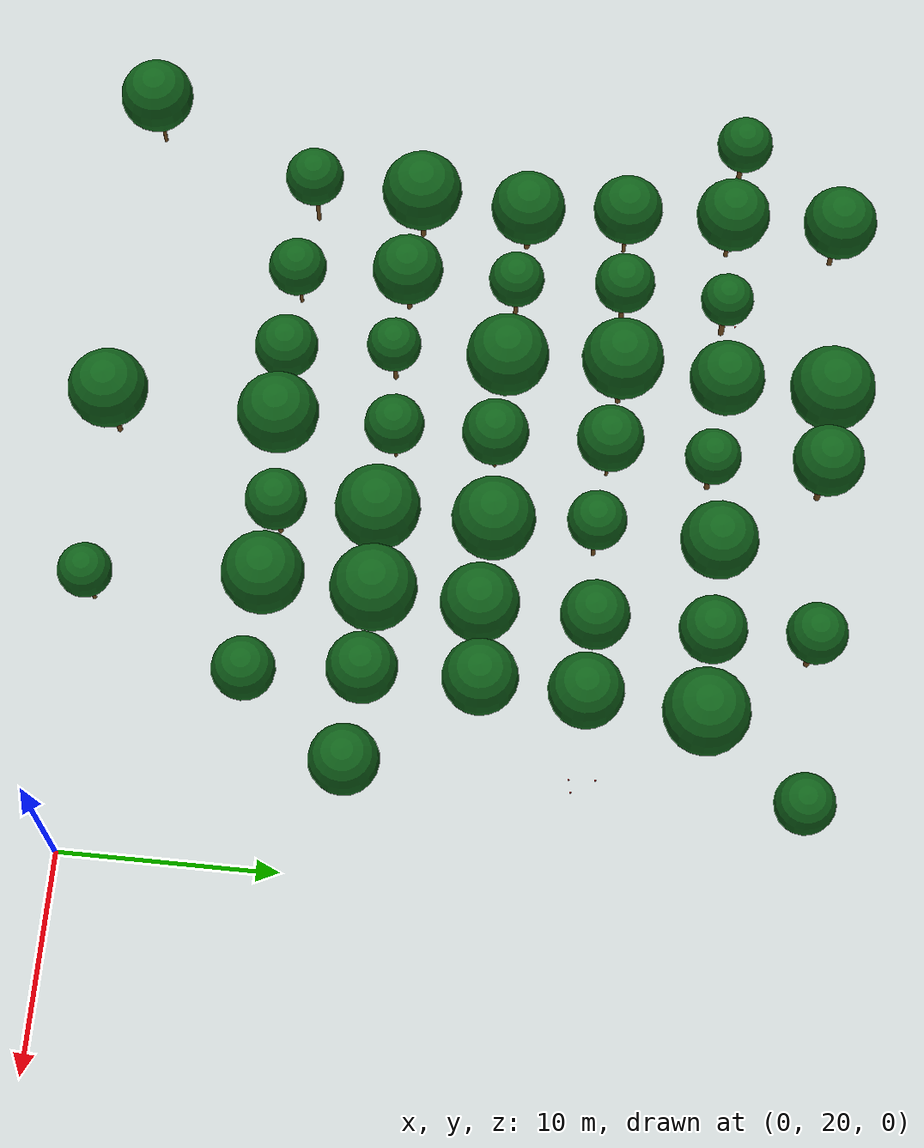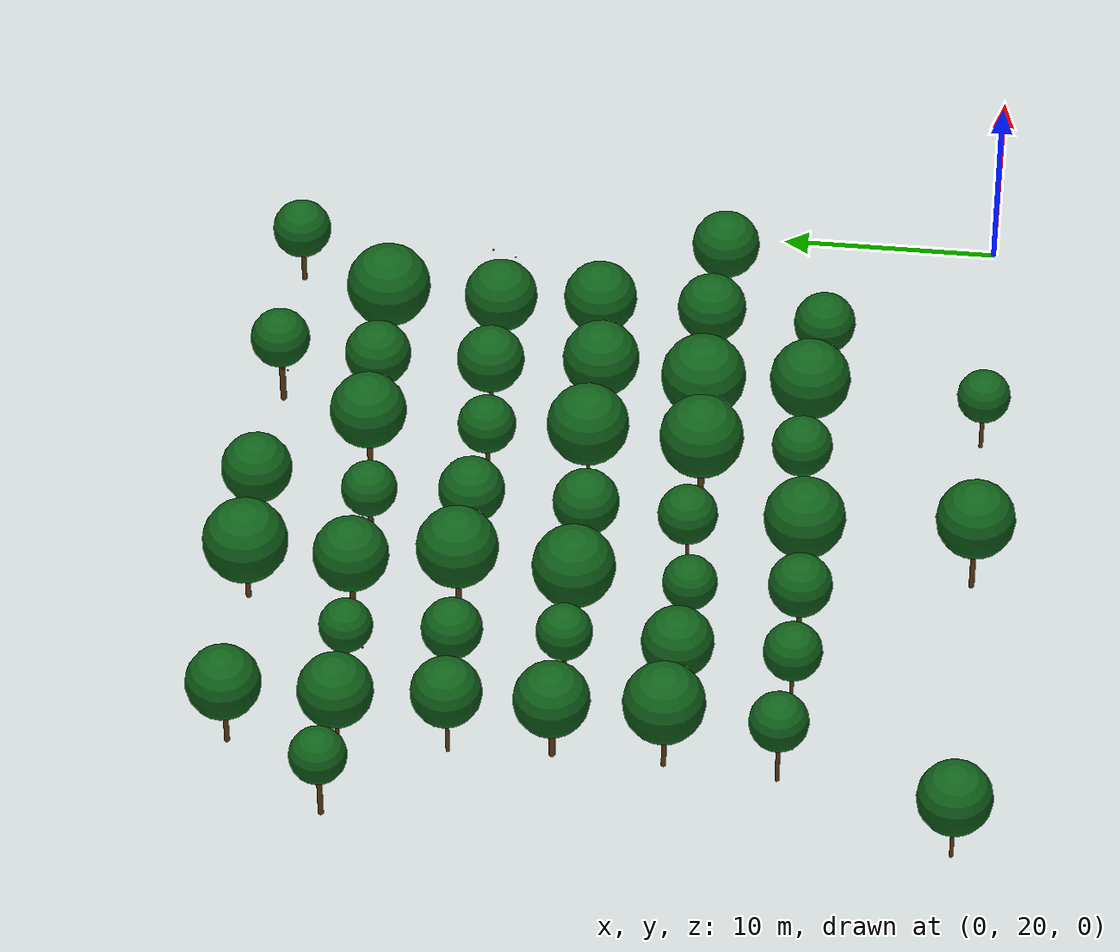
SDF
<sdf version="1.9">
 <world name="cheongsong_orchard">
  <model name="apple_tree_1439">
   <static>true</static>
   <pose>-35.99 19.99 0 0 0 0</pose>
   <link name="link">
    <collision name="trunk_col">
     <pose>0 0 1.26 0 0 0</pose>
     <geometry><cylinder><radius>0.089</radius><length>2.51</length></cylinder></geometry>
    </collision>
    <visual name="trunk_vis">
     <pose>0 0 1.26 0 0 0</pose>
     <geometry><cylinder><radius>0.089</radius><length>2.51</length></cylinder></geometry>
     <material><ambient>0.35 0.22 0.08 1</ambient><diffuse>0.45 0.30 0.12 1</diffuse></material>
    </visual>
    <collision name="canopy_col">
     <pose>0 0 4.22 0 0 0</pose>
     <geometry><sphere><radius>1.71</radius></sphere></geometry>
    </collision>
    <visual name="canopy_vis">
     <pose>0 0 4.22 0 0 0</pose>
     <geometry><sphere><radius>1.71</radius></sphere></geometry>
     <material><ambient>0.04 0.28 0.06 1</ambient><diffuse>0.06 0.38 0.10 1</diffuse></material>
    </visual>
   </link>
  </model>
  <model name="apple_tree_1443">
   <static>true</static>
   <pose>-20.47 19.95 0 0 0 0</pose>
   <link name="link">
    <collision name="trunk_col">
     <pose>0 0 1.45 0 0 0</pose>
     <geometry><cylinder><radius>0.124</radius><length>2.91</length></cylinder></geometry>
    </collision>
    <visual name="trunk_vis">
     <pose>0 0 1.45 0 0 0</pose>
     <geometry><cylinder><radius>0.124</radius><length>2.91</length></cylinder></geometry>
     <material><ambient>0.35 0.22 0.08 1</ambient><diffuse>0.45 0.30 0.12 1</diffuse></material>
    </visual>
    <collision name="canopy_col">
     <pose>0 0 4.73 0 0 0</pose>
     <geometry><sphere><radius>1.82</radius></sphere></geometry>
    </collision>
    <visual name="canopy_vis">
     <pose>0 0 4.73 0 0 0</pose>
     <geometry><sphere><radius>1.82</radius></sphere></geometry>
     <material><ambient>0.04 0.28 0.06 1</ambient><diffuse>0.06 0.38 0.10 1</diffuse></material>
    </visual>
   </link>
  </model>
  <model name="apple_tree_1445">
   <static>true</static>
   <pose>-12.05 19.99 0 0 0 0</pose>
   <link name="link">
    <collision name="trunk_col">
     <pose>0 0 1.16 0 0 0</pose>
     <geometry><cylinder><radius>0.098</radius><length>2.32</length></cylinder></geometry>
    </collision>
    <visual name="trunk_vis">
     <pose>0 0 1.16 0 0 0</pose>
     <geometry><cylinder><radius>0.098</radius><length>2.32</length></cylinder></geometry>
     <material><ambient>0.35 0.22 0.08 1</ambient><diffuse>0.45 0.30 0.12 1</diffuse></material>
    </visual>
    <collision name="canopy_col">
     <pose>0 0 3.56 0 0 0</pose>
     <geometry><sphere><radius>1.24</radius></sphere></geometry>
    </collision>
    <visual name="canopy_vis">
     <pose>0 0 3.56 0 0 0</pose>
     <geometry><sphere><radius>1.24</radius></sphere></geometry>
     <material><ambient>0.04 0.28 0.06 1</ambient><diffuse>0.06 0.38 0.10 1</diffuse></material>
    </visual>
   </link>
  </model>
  <model name="apple_tree_1490">
   <static>true</static>
   <pose>-32.43 27.95 0 0 0 0</pose>
   <link name="link">
    <collision name="trunk_col">
     <pose>0 0 1.40 0 0 0</pose>
     <geometry><cylinder><radius>0.099</radius><length>2.81</length></cylinder></geometry>
    </collision>
    <visual name="trunk_vis">
     <pose>0 0 1.40 0 0 0</pose>
     <geometry><cylinder><radius>0.099</radius><length>2.81</length></cylinder></geometry>
     <material><ambient>0.35 0.22 0.08 1</ambient><diffuse>0.45 0.30 0.12 1</diffuse></material>
    </visual>
    <collision name="canopy_col">
     <pose>0 0 4.17 0 0 0</pose>
     <geometry><sphere><radius>1.36</radius></sphere></geometry>
    </collision>
    <visual name="canopy_vis">
     <pose>0 0 4.17 0 0 0</pose>
     <geometry><sphere><radius>1.36</radius></sphere></geometry>
     <material><ambient>0.04 0.28 0.06 1</ambient><diffuse>0.06 0.38 0.10 1</diffuse></material>
    </visual>
   </link>
  </model>
  <model name="apple_tree_1491">
   <static>true</static>
   <pose>-27.95 27.65 0 0 0 0</pose>
   <link name="link">
    <collision name="trunk_col">
     <pose>0 0 1.13 0 0 0</pose>
     <geometry><cylinder><radius>0.085</radius><length>2.26</length></cylinder></geometry>
    </collision>
    <visual name="trunk_vis">
     <pose>0 0 1.13 0 0 0</pose>
     <geometry><cylinder><radius>0.085</radius><length>2.26</length></cylinder></geometry>
     <material><ambient>0.35 0.22 0.08 1</ambient><diffuse>0.45 0.30 0.12 1</diffuse></material>
    </visual>
    <collision name="canopy_col">
     <pose>0 0 3.61 0 0 0</pose>
     <geometry><sphere><radius>1.35</radius></sphere></geometry>
    </collision>
    <visual name="canopy_vis">
     <pose>0 0 3.61 0 0 0</pose>
     <geometry><sphere><radius>1.35</radius></sphere></geometry>
     <material><ambient>0.04 0.28 0.06 1</ambient><diffuse>0.06 0.38 0.10 1</diffuse></material>
    </visual>
   </link>
  </model>
  <model name="apple_tree_1492">
   <static>true</static>
   <pose>-23.95 27.60 0 0 0 0</pose>
   <link name="link">
    <collision name="trunk_col">
     <pose>0 0 0.98 0 0 0</pose>
     <geometry><cylinder><radius>0.113</radius><length>1.96</length></cylinder></geometry>
    </collision>
    <visual name="trunk_vis">
     <pose>0 0 0.98 0 0 0</pose>
     <geometry><cylinder><radius>0.113</radius><length>1.96</length></cylinder></geometry>
     <material><ambient>0.35 0.22 0.08 1</ambient><diffuse>0.45 0.30 0.12 1</diffuse></material>
    </visual>
    <collision name="canopy_col">
     <pose>0 0 3.43 0 0 0</pose>
     <geometry><sphere><radius>1.47</radius></sphere></geometry>
    </collision>
    <visual name="canopy_vis">
     <pose>0 0 3.43 0 0 0</pose>
     <geometry><sphere><radius>1.47</radius></sphere></geometry>
     <material><ambient>0.04 0.28 0.06 1</ambient><diffuse>0.06 0.38 0.10 1</diffuse></material>
    </visual>
   </link>
  </model>
  <model name="apple_tree_1493">
   <static>true</static>
   <pose>-20.38 27.67 0 0 0 0</pose>
   <link name="link">
    <collision name="trunk_col">
     <pose>0 0 1.01 0 0 0</pose>
     <geometry><cylinder><radius>0.128</radius><length>2.03</length></cylinder></geometry>
    </collision>
    <visual name="trunk_vis">
     <pose>0 0 1.01 0 0 0</pose>
     <geometry><cylinder><radius>0.128</radius><length>2.03</length></cylinder></geometry>
     <material><ambient>0.35 0.22 0.08 1</ambient><diffuse>0.45 0.30 0.12 1</diffuse></material>
    </visual>
    <collision name="canopy_col">
     <pose>0 0 3.91 0 0 0</pose>
     <geometry><sphere><radius>1.88</radius></sphere></geometry>
    </collision>
    <visual name="canopy_vis">
     <pose>0 0 3.91 0 0 0</pose>
     <geometry><sphere><radius>1.88</radius></sphere></geometry>
     <material><ambient>0.04 0.28 0.06 1</ambient><diffuse>0.06 0.38 0.10 1</diffuse></material>
    </visual>
   </link>
  </model>
  <model name="apple_tree_1494">
   <static>true</static>
   <pose>-16.13 28.09 0 0 0 0</pose>
   <link name="link">
    <collision name="trunk_col">
     <pose>0 0 1.26 0 0 0</pose>
     <geometry><cylinder><radius>0.114</radius><length>2.52</length></cylinder></geometry>
    </collision>
    <visual name="trunk_vis">
     <pose>0 0 1.26 0 0 0</pose>
     <geometry><cylinder><radius>0.114</radius><length>2.52</length></cylinder></geometry>
     <material><ambient>0.35 0.22 0.08 1</ambient><diffuse>0.45 0.30 0.12 1</diffuse></material>
    </visual>
    <collision name="canopy_col">
     <pose>0 0 3.92 0 0 0</pose>
     <geometry><sphere><radius>1.40</radius></sphere></geometry>
    </collision>
    <visual name="canopy_vis">
     <pose>0 0 3.92 0 0 0</pose>
     <geometry><sphere><radius>1.40</radius></sphere></geometry>
     <material><ambient>0.04 0.28 0.06 1</ambient><diffuse>0.06 0.38 0.10 1</diffuse></material>
    </visual>
   </link>
  </model>
  <model name="apple_tree_1495">
   <static>true</static>
   <pose>-12.42 28.00 0 0 0 0</pose>
   <link name="link">
    <collision name="trunk_col">
     <pose>0 0 1.25 0 0 0</pose>
     <geometry><cylinder><radius>0.149</radius><length>2.50</length></cylinder></geometry>
    </collision>
    <visual name="trunk_vis">
     <pose>0 0 1.25 0 0 0</pose>
     <geometry><cylinder><radius>0.149</radius><length>2.50</length></cylinder></geometry>
     <material><ambient>0.35 0.22 0.08 1</ambient><diffuse>0.45 0.30 0.12 1</diffuse></material>
    </visual>
    <collision name="canopy_col">
     <pose>0 0 4.37 0 0 0</pose>
     <geometry><sphere><radius>1.87</radius></sphere></geometry>
    </collision>
    <visual name="canopy_vis">
     <pose>0 0 4.37 0 0 0</pose>
     <geometry><sphere><radius>1.87</radius></sphere></geometry>
     <material><ambient>0.04 0.28 0.06 1</ambient><diffuse>0.06 0.38 0.10 1</diffuse></material>
    </visual>
   </link>
  </model>
  <model name="apple_tree_1496">
   <static>true</static>
   <pose>-8.17 27.61 0 0 0 0</pose>
   <link name="link">
    <collision name="trunk_col">
     <pose>0 0 1.05 0 0 0</pose>
     <geometry><cylinder><radius>0.087</radius><length>2.09</length></cylinder></geometry>
    </collision>
    <visual name="trunk_vis">
     <pose>0 0 1.05 0 0 0</pose>
     <geometry><cylinder><radius>0.087</radius><length>2.09</length></cylinder></geometry>
     <material><ambient>0.35 0.22 0.08 1</ambient><diffuse>0.45 0.30 0.12 1</diffuse></material>
    </visual>
    <collision name="canopy_col">
     <pose>0 0 3.54 0 0 0</pose>
     <geometry><sphere><radius>1.44</radius></sphere></geometry>
    </collision>
    <visual name="canopy_vis">
     <pose>0 0 3.54 0 0 0</pose>
     <geometry><sphere><radius>1.44</radius></sphere></geometry>
     <material><ambient>0.04 0.28 0.06 1</ambient><diffuse>0.06 0.38 0.10 1</diffuse></material>
    </visual>
   </link>
  </model>
  <model name="apple_tree_1542">
   <static>true</static>
   <pose>-32.05 33.06 0 0 0 0</pose>
   <link name="link">
    <collision name="trunk_col">
     <pose>0 0 1.29 0 0 0</pose>
     <geometry><cylinder><radius>0.115</radius><length>2.58</length></cylinder></geometry>
    </collision>
    <visual name="trunk_vis">
     <pose>0 0 1.29 0 0 0</pose>
     <geometry><cylinder><radius>0.115</radius><length>2.58</length></cylinder></geometry>
     <material><ambient>0.35 0.22 0.08 1</ambient><diffuse>0.45 0.30 0.12 1</diffuse></material>
    </visual>
    <collision name="canopy_col">
     <pose>0 0 4.44 0 0 0</pose>
     <geometry><sphere><radius>1.87</radius></sphere></geometry>
    </collision>
    <visual name="canopy_vis">
     <pose>0 0 4.44 0 0 0</pose>
     <geometry><sphere><radius>1.87</radius></sphere></geometry>
     <material><ambient>0.04 0.28 0.06 1</ambient><diffuse>0.06 0.38 0.10 1</diffuse></material>
    </visual>
   </link>
  </model>
  <model name="apple_tree_1543">
   <static>true</static>
   <pose>-28.15 32.79 0 0 0 0</pose>
   <link name="link">
    <collision name="trunk_col">
     <pose>0 0 1.15 0 0 0</pose>
     <geometry><cylinder><radius>0.123</radius><length>2.29</length></cylinder></geometry>
    </collision>
    <visual name="trunk_vis">
     <pose>0 0 1.15 0 0 0</pose>
     <geometry><cylinder><radius>0.123</radius><length>2.29</length></cylinder></geometry>
     <material><ambient>0.35 0.22 0.08 1</ambient><diffuse>0.45 0.30 0.12 1</diffuse></material>
    </visual>
    <collision name="canopy_col">
     <pose>0 0 3.94 0 0 0</pose>
     <geometry><sphere><radius>1.65</radius></sphere></geometry>
    </collision>
    <visual name="canopy_vis">
     <pose>0 0 3.94 0 0 0</pose>
     <geometry><sphere><radius>1.65</radius></sphere></geometry>
     <material><ambient>0.04 0.28 0.06 1</ambient><diffuse>0.06 0.38 0.10 1</diffuse></material>
    </visual>
   </link>
  </model>
  <model name="apple_tree_1544">
   <static>true</static>
   <pose>-24.41 32.55 0 0 0 0</pose>
   <link name="link">
    <collision name="trunk_col">
     <pose>0 0 1.18 0 0 0</pose>
     <geometry><cylinder><radius>0.106</radius><length>2.37</length></cylinder></geometry>
    </collision>
    <visual name="trunk_vis">
     <pose>0 0 1.18 0 0 0</pose>
     <geometry><cylinder><radius>0.106</radius><length>2.37</length></cylinder></geometry>
     <material><ambient>0.35 0.22 0.08 1</ambient><diffuse>0.45 0.30 0.12 1</diffuse></material>
    </visual>
    <collision name="canopy_col">
     <pose>0 0 3.62 0 0 0</pose>
     <geometry><sphere><radius>1.26</radius></sphere></geometry>
    </collision>
    <visual name="canopy_vis">
     <pose>0 0 3.62 0 0 0</pose>
     <geometry><sphere><radius>1.26</radius></sphere></geometry>
     <material><ambient>0.04 0.28 0.06 1</ambient><diffuse>0.06 0.38 0.10 1</diffuse></material>
    </visual>
   </link>
  </model>
  <model name="apple_tree_1545">
   <static>true</static>
   <pose>-20.44 32.98 0 0 0 0</pose>
   <link name="link">
    <collision name="trunk_col">
     <pose>0 0 1.12 0 0 0</pose>
     <geometry><cylinder><radius>0.088</radius><length>2.24</length></cylinder></geometry>
    </collision>
    <visual name="trunk_vis">
     <pose>0 0 1.12 0 0 0</pose>
     <geometry><cylinder><radius>0.088</radius><length>2.24</length></cylinder></geometry>
     <material><ambient>0.35 0.22 0.08 1</ambient><diffuse>0.45 0.30 0.12 1</diffuse></material>
    </visual>
    <collision name="canopy_col">
     <pose>0 0 3.63 0 0 0</pose>
     <geometry><sphere><radius>1.38</radius></sphere></geometry>
    </collision>
    <visual name="canopy_vis">
     <pose>0 0 3.63 0 0 0</pose>
     <geometry><sphere><radius>1.38</radius></sphere></geometry>
     <material><ambient>0.04 0.28 0.06 1</ambient><diffuse>0.06 0.38 0.10 1</diffuse></material>
    </visual>
   </link>
  </model>
  <model name="apple_tree_1546">
   <static>true</static>
   <pose>-16.13 32.71 0 0 0 0</pose>
   <link name="link">
    <collision name="trunk_col">
     <pose>0 0 1.08 0 0 0</pose>
     <geometry><cylinder><radius>0.146</radius><length>2.17</length></cylinder></geometry>
    </collision>
    <visual name="trunk_vis">
     <pose>0 0 1.08 0 0 0</pose>
     <geometry><cylinder><radius>0.146</radius><length>2.17</length></cylinder></geometry>
     <material><ambient>0.35 0.22 0.08 1</ambient><diffuse>0.45 0.30 0.12 1</diffuse></material>
    </visual>
    <collision name="canopy_col">
     <pose>0 0 4.11 0 0 0</pose>
     <geometry><sphere><radius>1.94</radius></sphere></geometry>
    </collision>
    <visual name="canopy_vis">
     <pose>0 0 4.11 0 0 0</pose>
     <geometry><sphere><radius>1.94</radius></sphere></geometry>
     <material><ambient>0.04 0.28 0.06 1</ambient><diffuse>0.06 0.38 0.10 1</diffuse></material>
    </visual>
   </link>
  </model>
  <model name="apple_tree_1547">
   <static>true</static>
   <pose>-12.34 32.93 0 0 0 0</pose>
   <link name="link">
    <collision name="trunk_col">
     <pose>0 0 1.01 0 0 0</pose>
     <geometry><cylinder><radius>0.141</radius><length>2.02</length></cylinder></geometry>
    </collision>
    <visual name="trunk_vis">
     <pose>0 0 1.01 0 0 0</pose>
     <geometry><cylinder><radius>0.141</radius><length>2.02</length></cylinder></geometry>
     <material><ambient>0.35 0.22 0.08 1</ambient><diffuse>0.45 0.30 0.12 1</diffuse></material>
    </visual>
    <collision name="canopy_col">
     <pose>0 0 3.99 0 0 0</pose>
     <geometry><sphere><radius>1.97</radius></sphere></geometry>
    </collision>
    <visual name="canopy_vis">
     <pose>0 0 3.99 0 0 0</pose>
     <geometry><sphere><radius>1.97</radius></sphere></geometry>
     <material><ambient>0.04 0.28 0.06 1</ambient><diffuse>0.06 0.38 0.10 1</diffuse></material>
    </visual>
   </link>
  </model>
  <model name="apple_tree_1548">
   <static>true</static>
   <pose>-8.44 32.86 0 0 0 0</pose>
   <link name="link">
    <collision name="trunk_col">
     <pose>0 0 1.39 0 0 0</pose>
     <geometry><cylinder><radius>0.145</radius><length>2.78</length></cylinder></geometry>
    </collision>
    <visual name="trunk_vis">
     <pose>0 0 1.39 0 0 0</pose>
     <geometry><cylinder><radius>0.145</radius><length>2.78</length></cylinder></geometry>
     <material><ambient>0.35 0.22 0.08 1</ambient><diffuse>0.45 0.30 0.12 1</diffuse></material>
    </visual>
    <collision name="canopy_col">
     <pose>0 0 4.38 0 0 0</pose>
     <geometry><sphere><radius>1.60</radius></sphere></geometry>
    </collision>
    <visual name="canopy_vis">
     <pose>0 0 4.38 0 0 0</pose>
     <geometry><sphere><radius>1.60</radius></sphere></geometry>
     <material><ambient>0.04 0.28 0.06 1</ambient><diffuse>0.06 0.38 0.10 1</diffuse></material>
    </visual>
   </link>
  </model>
  <model name="apple_tree_1549">
   <static>true</static>
   <pose>-4.25 32.54 0 0 0 0</pose>
   <link name="link">
    <collision name="trunk_col">
     <pose>0 0 1.32 0 0 0</pose>
     <geometry><cylinder><radius>0.088</radius><length>2.63</length></cylinder></geometry>
    </collision>
    <visual name="trunk_vis">
     <pose>0 0 1.32 0 0 0</pose>
     <geometry><cylinder><radius>0.088</radius><length>2.63</length></cylinder></geometry>
     <material><ambient>0.35 0.22 0.08 1</ambient><diffuse>0.45 0.30 0.12 1</diffuse></material>
    </visual>
    <collision name="canopy_col">
     <pose>0 0 4.21 0 0 0</pose>
     <geometry><sphere><radius>1.58</radius></sphere></geometry>
    </collision>
    <visual name="canopy_vis">
     <pose>0 0 4.21 0 0 0</pose>
     <geometry><sphere><radius>1.58</radius></sphere></geometry>
     <material><ambient>0.04 0.28 0.06 1</ambient><diffuse>0.06 0.38 0.10 1</diffuse></material>
    </visual>
   </link>
  </model>
  <model name="apple_tree_1596">
   <static>true</static>
   <pose>-31.90 38.07 0 0 0 0</pose>
   <link name="link">
    <collision name="trunk_col">
     <pose>0 0 1.09 0 0 0</pose>
     <geometry><cylinder><radius>0.144</radius><length>2.19</length></cylinder></geometry>
    </collision>
    <visual name="trunk_vis">
     <pose>0 0 1.09 0 0 0</pose>
     <geometry><cylinder><radius>0.144</radius><length>2.19</length></cylinder></geometry>
     <material><ambient>0.35 0.22 0.08 1</ambient><diffuse>0.45 0.30 0.12 1</diffuse></material>
    </visual>
    <collision name="canopy_col">
     <pose>0 0 3.93 0 0 0</pose>
     <geometry><sphere><radius>1.74</radius></sphere></geometry>
    </collision>
    <visual name="canopy_vis">
     <pose>0 0 3.93 0 0 0</pose>
     <geometry><sphere><radius>1.74</radius></sphere></geometry>
     <material><ambient>0.04 0.28 0.06 1</ambient><diffuse>0.06 0.38 0.10 1</diffuse></material>
    </visual>
   </link>
  </model>
  <model name="apple_tree_1597">
   <static>true</static>
   <pose>-28.09 37.87 0 0 0 0</pose>
   <link name="link">
    <collision name="trunk_col">
     <pose>0 0 1.36 0 0 0</pose>
     <geometry><cylinder><radius>0.104</radius><length>2.73</length></cylinder></geometry>
    </collision>
    <visual name="trunk_vis">
     <pose>0 0 1.36 0 0 0</pose>
     <geometry><cylinder><radius>0.104</radius><length>2.73</length></cylinder></geometry>
     <material><ambient>0.35 0.22 0.08 1</ambient><diffuse>0.45 0.30 0.12 1</diffuse></material>
    </visual>
    <collision name="canopy_col">
     <pose>0 0 4.02 0 0 0</pose>
     <geometry><sphere><radius>1.29</radius></sphere></geometry>
    </collision>
    <visual name="canopy_vis">
     <pose>0 0 4.02 0 0 0</pose>
     <geometry><sphere><radius>1.29</radius></sphere></geometry>
     <material><ambient>0.04 0.28 0.06 1</ambient><diffuse>0.06 0.38 0.10 1</diffuse></material>
    </visual>
   </link>
  </model>
  <model name="apple_tree_1598">
   <static>true</static>
   <pose>-24.24 37.81 0 0 0 0</pose>
   <link name="link">
    <collision name="trunk_col">
     <pose>0 0 1.05 0 0 0</pose>
     <geometry><cylinder><radius>0.115</radius><length>2.09</length></cylinder></geometry>
    </collision>
    <visual name="trunk_vis">
     <pose>0 0 1.05 0 0 0</pose>
     <geometry><cylinder><radius>0.115</radius><length>2.09</length></cylinder></geometry>
     <material><ambient>0.35 0.22 0.08 1</ambient><diffuse>0.45 0.30 0.12 1</diffuse></material>
    </visual>
    <collision name="canopy_col">
     <pose>0 0 4.00 0 0 0</pose>
     <geometry><sphere><radius>1.91</radius></sphere></geometry>
    </collision>
    <visual name="canopy_vis">
     <pose>0 0 4.00 0 0 0</pose>
     <geometry><sphere><radius>1.91</radius></sphere></geometry>
     <material><ambient>0.04 0.28 0.06 1</ambient><diffuse>0.06 0.38 0.10 1</diffuse></material>
    </visual>
   </link>
  </model>
  <model name="apple_tree_1599">
   <static>true</static>
   <pose>-20.37 37.62 0 0 0 0</pose>
   <link name="link">
    <collision name="trunk_col">
     <pose>0 0 1.20 0 0 0</pose>
     <geometry><cylinder><radius>0.092</radius><length>2.39</length></cylinder></geometry>
    </collision>
    <visual name="trunk_vis">
     <pose>0 0 1.20 0 0 0</pose>
     <geometry><cylinder><radius>0.092</radius><length>2.39</length></cylinder></geometry>
     <material><ambient>0.35 0.22 0.08 1</ambient><diffuse>0.45 0.30 0.12 1</diffuse></material>
    </visual>
    <collision name="canopy_col">
     <pose>0 0 3.93 0 0 0</pose>
     <geometry><sphere><radius>1.53</radius></sphere></geometry>
    </collision>
    <visual name="canopy_vis">
     <pose>0 0 3.93 0 0 0</pose>
     <geometry><sphere><radius>1.53</radius></sphere></geometry>
     <material><ambient>0.04 0.28 0.06 1</ambient><diffuse>0.06 0.38 0.10 1</diffuse></material>
    </visual>
   </link>
  </model>
  <model name="apple_tree_1600">
   <static>true</static>
   <pose>-16.03 37.94 0 0 0 0</pose>
   <link name="link">
    <collision name="trunk_col">
     <pose>0 0 1.20 0 0 0</pose>
     <geometry><cylinder><radius>0.087</radius><length>2.41</length></cylinder></geometry>
    </collision>
    <visual name="trunk_vis">
     <pose>0 0 1.20 0 0 0</pose>
     <geometry><cylinder><radius>0.087</radius><length>2.41</length></cylinder></geometry>
     <material><ambient>0.35 0.22 0.08 1</ambient><diffuse>0.45 0.30 0.12 1</diffuse></material>
    </visual>
    <collision name="canopy_col">
     <pose>0 0 4.30 0 0 0</pose>
     <geometry><sphere><radius>1.90</radius></sphere></geometry>
    </collision>
    <visual name="canopy_vis">
     <pose>0 0 4.30 0 0 0</pose>
     <geometry><sphere><radius>1.90</radius></sphere></geometry>
     <material><ambient>0.04 0.28 0.06 1</ambient><diffuse>0.06 0.38 0.10 1</diffuse></material>
    </visual>
   </link>
  </model>
  <model name="apple_tree_1601">
   <static>true</static>
   <pose>-11.99 37.71 0 0 0 0</pose>
   <link name="link">
    <collision name="trunk_col">
     <pose>0 0 1.27 0 0 0</pose>
     <geometry><cylinder><radius>0.088</radius><length>2.54</length></cylinder></geometry>
    </collision>
    <visual name="trunk_vis">
     <pose>0 0 1.27 0 0 0</pose>
     <geometry><cylinder><radius>0.088</radius><length>2.54</length></cylinder></geometry>
     <material><ambient>0.35 0.22 0.08 1</ambient><diffuse>0.45 0.30 0.12 1</diffuse></material>
    </visual>
    <collision name="canopy_col">
     <pose>0 0 4.32 0 0 0</pose>
     <geometry><sphere><radius>1.78</radius></sphere></geometry>
    </collision>
    <visual name="canopy_vis">
     <pose>0 0 4.32 0 0 0</pose>
     <geometry><sphere><radius>1.78</radius></sphere></geometry>
     <material><ambient>0.04 0.28 0.06 1</ambient><diffuse>0.06 0.38 0.10 1</diffuse></material>
    </visual>
   </link>
  </model>
  <model name="apple_tree_1602">
   <static>true</static>
   <pose>-8.45 38.06 0 0 0 0</pose>
   <link name="link">
    <collision name="trunk_col">
     <pose>0 0 1.44 0 0 0</pose>
     <geometry><cylinder><radius>0.144</radius><length>2.88</length></cylinder></geometry>
    </collision>
    <visual name="trunk_vis">
     <pose>0 0 1.44 0 0 0</pose>
     <geometry><cylinder><radius>0.144</radius><length>2.88</length></cylinder></geometry>
     <material><ambient>0.35 0.22 0.08 1</ambient><diffuse>0.45 0.30 0.12 1</diffuse></material>
    </visual>
    <collision name="canopy_col">
     <pose>0 0 4.58 0 0 0</pose>
     <geometry><sphere><radius>1.70</radius></sphere></geometry>
    </collision>
    <visual name="canopy_vis">
     <pose>0 0 4.58 0 0 0</pose>
     <geometry><sphere><radius>1.70</radius></sphere></geometry>
     <material><ambient>0.04 0.28 0.06 1</ambient><diffuse>0.06 0.38 0.10 1</diffuse></material>
    </visual>
   </link>
  </model>
  <model name="apple_tree_1653">
   <static>true</static>
   <pose>-32.12 42.73 0 0 0 0</pose>
   <link name="link">
    <collision name="trunk_col">
     <pose>0 0 1.29 0 0 0</pose>
     <geometry><cylinder><radius>0.090</radius><length>2.58</length></cylinder></geometry>
    </collision>
    <visual name="trunk_vis">
     <pose>0 0 1.29 0 0 0</pose>
     <geometry><cylinder><radius>0.090</radius><length>2.58</length></cylinder></geometry>
     <material><ambient>0.35 0.22 0.08 1</ambient><diffuse>0.45 0.30 0.12 1</diffuse></material>
    </visual>
    <collision name="canopy_col">
     <pose>0 0 4.20 0 0 0</pose>
     <geometry><sphere><radius>1.62</radius></sphere></geometry>
    </collision>
    <visual name="canopy_vis">
     <pose>0 0 4.20 0 0 0</pose>
     <geometry><sphere><radius>1.62</radius></sphere></geometry>
     <material><ambient>0.04 0.28 0.06 1</ambient><diffuse>0.06 0.38 0.10 1</diffuse></material>
    </visual>
   </link>
  </model>
  <model name="apple_tree_1654">
   <static>true</static>
   <pose>-28.37 42.88 0 0 0 0</pose>
   <link name="link">
    <collision name="trunk_col">
     <pose>0 0 1.32 0 0 0</pose>
     <geometry><cylinder><radius>0.116</radius><length>2.65</length></cylinder></geometry>
    </collision>
    <visual name="trunk_vis">
     <pose>0 0 1.32 0 0 0</pose>
     <geometry><cylinder><radius>0.116</radius><length>2.65</length></cylinder></geometry>
     <material><ambient>0.35 0.22 0.08 1</ambient><diffuse>0.45 0.30 0.12 1</diffuse></material>
    </visual>
    <collision name="canopy_col">
     <pose>0 0 4.05 0 0 0</pose>
     <geometry><sphere><radius>1.40</radius></sphere></geometry>
    </collision>
    <visual name="canopy_vis">
     <pose>0 0 4.05 0 0 0</pose>
     <geometry><sphere><radius>1.40</radius></sphere></geometry>
     <material><ambient>0.04 0.28 0.06 1</ambient><diffuse>0.06 0.38 0.10 1</diffuse></material>
    </visual>
   </link>
  </model>
  <model name="apple_tree_1655">
   <static>true</static>
   <pose>-24.21 43.07 0 0 0 0</pose>
   <link name="link">
    <collision name="trunk_col">
     <pose>0 0 1.43 0 0 0</pose>
     <geometry><cylinder><radius>0.130</radius><length>2.85</length></cylinder></geometry>
    </collision>
    <visual name="trunk_vis">
     <pose>0 0 1.43 0 0 0</pose>
     <geometry><cylinder><radius>0.130</radius><length>2.85</length></cylinder></geometry>
     <material><ambient>0.35 0.22 0.08 1</ambient><diffuse>0.45 0.30 0.12 1</diffuse></material>
    </visual>
    <collision name="canopy_col">
     <pose>0 0 4.74 0 0 0</pose>
     <geometry><sphere><radius>1.88</radius></sphere></geometry>
    </collision>
    <visual name="canopy_vis">
     <pose>0 0 4.74 0 0 0</pose>
     <geometry><sphere><radius>1.88</radius></sphere></geometry>
     <material><ambient>0.04 0.28 0.06 1</ambient><diffuse>0.06 0.38 0.10 1</diffuse></material>
    </visual>
   </link>
  </model>
  <model name="apple_tree_1656">
   <static>true</static>
   <pose>-20.41 42.83 0 0 0 0</pose>
   <link name="link">
    <collision name="trunk_col">
     <pose>0 0 1.38 0 0 0</pose>
     <geometry><cylinder><radius>0.081</radius><length>2.76</length></cylinder></geometry>
    </collision>
    <visual name="trunk_vis">
     <pose>0 0 1.38 0 0 0</pose>
     <geometry><cylinder><radius>0.081</radius><length>2.76</length></cylinder></geometry>
     <material><ambient>0.35 0.22 0.08 1</ambient><diffuse>0.45 0.30 0.12 1</diffuse></material>
    </visual>
    <collision name="canopy_col">
     <pose>0 0 4.29 0 0 0</pose>
     <geometry><sphere><radius>1.53</radius></sphere></geometry>
    </collision>
    <visual name="canopy_vis">
     <pose>0 0 4.29 0 0 0</pose>
     <geometry><sphere><radius>1.53</radius></sphere></geometry>
     <material><ambient>0.04 0.28 0.06 1</ambient><diffuse>0.06 0.38 0.10 1</diffuse></material>
    </visual>
   </link>
  </model>
  <model name="apple_tree_1657">
   <static>true</static>
   <pose>-16.40 42.55 0 0 0 0</pose>
   <link name="link">
    <collision name="trunk_col">
     <pose>0 0 1.45 0 0 0</pose>
     <geometry><cylinder><radius>0.102</radius><length>2.90</length></cylinder></geometry>
    </collision>
    <visual name="trunk_vis">
     <pose>0 0 1.45 0 0 0</pose>
     <geometry><cylinder><radius>0.102</radius><length>2.90</length></cylinder></geometry>
     <material><ambient>0.35 0.22 0.08 1</ambient><diffuse>0.45 0.30 0.12 1</diffuse></material>
    </visual>
    <collision name="canopy_col">
     <pose>0 0 4.25 0 0 0</pose>
     <geometry><sphere><radius>1.35</radius></sphere></geometry>
    </collision>
    <visual name="canopy_vis">
     <pose>0 0 4.25 0 0 0</pose>
     <geometry><sphere><radius>1.35</radius></sphere></geometry>
     <material><ambient>0.04 0.28 0.06 1</ambient><diffuse>0.06 0.38 0.10 1</diffuse></material>
    </visual>
   </link>
  </model>
  <model name="apple_tree_1658">
   <static>true</static>
   <pose>-12.07 42.83 0 0 0 0</pose>
   <link name="link">
    <collision name="trunk_col">
     <pose>0 0 1.14 0 0 0</pose>
     <geometry><cylinder><radius>0.084</radius><length>2.27</length></cylinder></geometry>
    </collision>
    <visual name="trunk_vis">
     <pose>0 0 1.14 0 0 0</pose>
     <geometry><cylinder><radius>0.084</radius><length>2.27</length></cylinder></geometry>
     <material><ambient>0.35 0.22 0.08 1</ambient><diffuse>0.45 0.30 0.12 1</diffuse></material>
    </visual>
    <collision name="canopy_col">
     <pose>0 0 3.85 0 0 0</pose>
     <geometry><sphere><radius>1.57</radius></sphere></geometry>
    </collision>
    <visual name="canopy_vis">
     <pose>0 0 3.85 0 0 0</pose>
     <geometry><sphere><radius>1.57</radius></sphere></geometry>
     <material><ambient>0.04 0.28 0.06 1</ambient><diffuse>0.06 0.38 0.10 1</diffuse></material>
    </visual>
   </link>
  </model>
  <model name="apple_tree_1659">
   <static>true</static>
   <pose>-8.40 42.72 0 0 0 0</pose>
   <link name="link">
    <collision name="trunk_col">
     <pose>0 0 1.25 0 0 0</pose>
     <geometry><cylinder><radius>0.096</radius><length>2.50</length></cylinder></geometry>
    </collision>
    <visual name="trunk_vis">
     <pose>0 0 1.25 0 0 0</pose>
     <geometry><cylinder><radius>0.096</radius><length>2.50</length></cylinder></geometry>
     <material><ambient>0.35 0.22 0.08 1</ambient><diffuse>0.45 0.30 0.12 1</diffuse></material>
    </visual>
    <collision name="canopy_col">
     <pose>0 0 4.20 0 0 0</pose>
     <geometry><sphere><radius>1.70</radius></sphere></geometry>
    </collision>
    <visual name="canopy_vis">
     <pose>0 0 4.20 0 0 0</pose>
     <geometry><sphere><radius>1.70</radius></sphere></geometry>
     <material><ambient>0.04 0.28 0.06 1</ambient><diffuse>0.06 0.38 0.10 1</diffuse></material>
    </visual>
   </link>
  </model>
  <model name="apple_tree_1708">
   <static>true</static>
   <pose>-36.12 47.96 0 0 0 0</pose>
   <link name="link">
    <collision name="trunk_col">
     <pose>0 0 1.42 0 0 0</pose>
     <geometry><cylinder><radius>0.125</radius><length>2.84</length></cylinder></geometry>
    </collision>
    <visual name="trunk_vis">
     <pose>0 0 1.42 0 0 0</pose>
     <geometry><cylinder><radius>0.125</radius><length>2.84</length></cylinder></geometry>
     <material><ambient>0.35 0.22 0.08 1</ambient><diffuse>0.45 0.30 0.12 1</diffuse></material>
    </visual>
    <collision name="canopy_col">
     <pose>0 0 4.15 0 0 0</pose>
     <geometry><sphere><radius>1.31</radius></sphere></geometry>
    </collision>
    <visual name="canopy_vis">
     <pose>0 0 4.15 0 0 0</pose>
     <geometry><sphere><radius>1.31</radius></sphere></geometry>
     <material><ambient>0.04 0.28 0.06 1</ambient><diffuse>0.06 0.38 0.10 1</diffuse></material>
    </visual>
   </link>
  </model>
  <model name="apple_tree_1709">
   <static>true</static>
   <pose>-32.38 47.64 0 0 0 0</pose>
   <link name="link">
    <collision name="trunk_col">
     <pose>0 0 1.19 0 0 0</pose>
     <geometry><cylinder><radius>0.104</radius><length>2.37</length></cylinder></geometry>
    </collision>
    <visual name="trunk_vis">
     <pose>0 0 1.19 0 0 0</pose>
     <geometry><cylinder><radius>0.104</radius><length>2.37</length></cylinder></geometry>
     <material><ambient>0.35 0.22 0.08 1</ambient><diffuse>0.45 0.30 0.12 1</diffuse></material>
    </visual>
    <collision name="canopy_col">
     <pose>0 0 4.10 0 0 0</pose>
     <geometry><sphere><radius>1.72</radius></sphere></geometry>
    </collision>
    <visual name="canopy_vis">
     <pose>0 0 4.10 0 0 0</pose>
     <geometry><sphere><radius>1.72</radius></sphere></geometry>
     <material><ambient>0.04 0.28 0.06 1</ambient><diffuse>0.06 0.38 0.10 1</diffuse></material>
    </visual>
   </link>
  </model>
  <model name="apple_tree_1710">
   <static>true</static>
   <pose>-28.23 47.68 0 0 0 0</pose>
   <link name="link">
    <collision name="trunk_col">
     <pose>0 0 1.16 0 0 0</pose>
     <geometry><cylinder><radius>0.137</radius><length>2.33</length></cylinder></geometry>
    </collision>
    <visual name="trunk_vis">
     <pose>0 0 1.16 0 0 0</pose>
     <geometry><cylinder><radius>0.137</radius><length>2.33</length></cylinder></geometry>
     <material><ambient>0.35 0.22 0.08 1</ambient><diffuse>0.45 0.30 0.12 1</diffuse></material>
    </visual>
    <collision name="canopy_col">
     <pose>0 0 3.56 0 0 0</pose>
     <geometry><sphere><radius>1.23</radius></sphere></geometry>
    </collision>
    <visual name="canopy_vis">
     <pose>0 0 3.56 0 0 0</pose>
     <geometry><sphere><radius>1.23</radius></sphere></geometry>
     <material><ambient>0.04 0.28 0.06 1</ambient><diffuse>0.06 0.38 0.10 1</diffuse></material>
    </visual>
   </link>
  </model>
  <model name="apple_tree_1711">
   <static>true</static>
   <pose>-24.19 47.92 0 0 0 0</pose>
   <link name="link">
    <collision name="trunk_col">
     <pose>0 0 0.98 0 0 0</pose>
     <geometry><cylinder><radius>0.126</radius><length>1.96</length></cylinder></geometry>
    </collision>
    <visual name="trunk_vis">
     <pose>0 0 0.98 0 0 0</pose>
     <geometry><cylinder><radius>0.126</radius><length>1.96</length></cylinder></geometry>
     <material><ambient>0.35 0.22 0.08 1</ambient><diffuse>0.45 0.30 0.12 1</diffuse></material>
    </visual>
    <collision name="canopy_col">
     <pose>0 0 3.70 0 0 0</pose>
     <geometry><sphere><radius>1.74</radius></sphere></geometry>
    </collision>
    <visual name="canopy_vis">
     <pose>0 0 3.70 0 0 0</pose>
     <geometry><sphere><radius>1.74</radius></sphere></geometry>
     <material><ambient>0.04 0.28 0.06 1</ambient><diffuse>0.06 0.38 0.10 1</diffuse></material>
    </visual>
   </link>
  </model>
  <model name="apple_tree_1712">
   <static>true</static>
   <pose>-20.24 47.54 0 0 0 0</pose>
   <link name="link">
    <collision name="trunk_col">
     <pose>0 0 1.18 0 0 0</pose>
     <geometry><cylinder><radius>0.132</radius><length>2.36</length></cylinder></geometry>
    </collision>
    <visual name="trunk_vis">
     <pose>0 0 1.18 0 0 0</pose>
     <geometry><cylinder><radius>0.132</radius><length>2.36</length></cylinder></geometry>
     <material><ambient>0.35 0.22 0.08 1</ambient><diffuse>0.45 0.30 0.12 1</diffuse></material>
    </visual>
    <collision name="canopy_col">
     <pose>0 0 3.66 0 0 0</pose>
     <geometry><sphere><radius>1.29</radius></sphere></geometry>
    </collision>
    <visual name="canopy_vis">
     <pose>0 0 3.66 0 0 0</pose>
     <geometry><sphere><radius>1.29</radius></sphere></geometry>
     <material><ambient>0.04 0.28 0.06 1</ambient><diffuse>0.06 0.38 0.10 1</diffuse></material>
    </visual>
   </link>
  </model>
  <model name="apple_tree_1713">
   <static>true</static>
   <pose>-16.01 48.06 0 0 0 0</pose>
   <link name="link">
    <collision name="trunk_col">
     <pose>0 0 1.22 0 0 0</pose>
     <geometry><cylinder><radius>0.135</radius><length>2.44</length></cylinder></geometry>
    </collision>
    <visual name="trunk_vis">
     <pose>0 0 1.22 0 0 0</pose>
     <geometry><cylinder><radius>0.135</radius><length>2.44</length></cylinder></geometry>
     <material><ambient>0.35 0.22 0.08 1</ambient><diffuse>0.45 0.30 0.12 1</diffuse></material>
    </visual>
    <collision name="canopy_col">
     <pose>0 0 4.21 0 0 0</pose>
     <geometry><sphere><radius>1.77</radius></sphere></geometry>
    </collision>
    <visual name="canopy_vis">
     <pose>0 0 4.21 0 0 0</pose>
     <geometry><sphere><radius>1.77</radius></sphere></geometry>
     <material><ambient>0.04 0.28 0.06 1</ambient><diffuse>0.06 0.38 0.10 1</diffuse></material>
    </visual>
   </link>
  </model>
  <model name="apple_tree_1714">
   <static>true</static>
   <pose>-11.98 48.09 0 0 0 0</pose>
   <link name="link">
    <collision name="trunk_col">
     <pose>0 0 1.03 0 0 0</pose>
     <geometry><cylinder><radius>0.093</radius><length>2.06</length></cylinder></geometry>
    </collision>
    <visual name="trunk_vis">
     <pose>0 0 1.03 0 0 0</pose>
     <geometry><cylinder><radius>0.093</radius><length>2.06</length></cylinder></geometry>
     <material><ambient>0.35 0.22 0.08 1</ambient><diffuse>0.45 0.30 0.12 1</diffuse></material>
    </visual>
    <collision name="canopy_col">
     <pose>0 0 3.60 0 0 0</pose>
     <geometry><sphere><radius>1.54</radius></sphere></geometry>
    </collision>
    <visual name="canopy_vis">
     <pose>0 0 3.60 0 0 0</pose>
     <geometry><sphere><radius>1.54</radius></sphere></geometry>
     <material><ambient>0.04 0.28 0.06 1</ambient><diffuse>0.06 0.38 0.10 1</diffuse></material>
    </visual>
   </link>
  </model>
  <model name="apple_tree_1715">
   <static>true</static>
   <pose>-8.03 48.03 0 0 0 0</pose>
   <link name="link">
    <collision name="trunk_col">
     <pose>0 0 1.01 0 0 0</pose>
     <geometry><cylinder><radius>0.080</radius><length>2.03</length></cylinder></geometry>
    </collision>
    <visual name="trunk_vis">
     <pose>0 0 1.01 0 0 0</pose>
     <geometry><cylinder><radius>0.080</radius><length>2.03</length></cylinder></geometry>
     <material><ambient>0.35 0.22 0.08 1</ambient><diffuse>0.45 0.30 0.12 1</diffuse></material>
    </visual>
    <collision name="canopy_col">
     <pose>0 0 3.99 0 0 0</pose>
     <geometry><sphere><radius>1.96</radius></sphere></geometry>
    </collision>
    <visual name="canopy_vis">
     <pose>0 0 3.99 0 0 0</pose>
     <geometry><sphere><radius>1.96</radius></sphere></geometry>
     <material><ambient>0.04 0.28 0.06 1</ambient><diffuse>0.06 0.38 0.10 1</diffuse></material>
    </visual>
   </link>
  </model>
  <model name="apple_tree_1765">
   <static>true</static>
   <pose>-32.42 52.63 0 0 0 0</pose>
   <link name="link">
    <collision name="trunk_col">
     <pose>0 0 1.22 0 0 0</pose>
     <geometry><cylinder><radius>0.120</radius><length>2.44</length></cylinder></geometry>
    </collision>
    <visual name="trunk_vis">
     <pose>0 0 1.22 0 0 0</pose>
     <geometry><cylinder><radius>0.120</radius><length>2.44</length></cylinder></geometry>
     <material><ambient>0.35 0.22 0.08 1</ambient><diffuse>0.45 0.30 0.12 1</diffuse></material>
    </visual>
    <collision name="canopy_col">
     <pose>0 0 4.15 0 0 0</pose>
     <geometry><sphere><radius>1.71</radius></sphere></geometry>
    </collision>
    <visual name="canopy_vis">
     <pose>0 0 4.15 0 0 0</pose>
     <geometry><sphere><radius>1.71</radius></sphere></geometry>
     <material><ambient>0.04 0.28 0.06 1</ambient><diffuse>0.06 0.38 0.10 1</diffuse></material>
    </visual>
   </link>
  </model>
  <model name="apple_tree_1767">
   <static>true</static>
   <pose>-24.04 52.73 0 0 0 0</pose>
   <link name="link">
    <collision name="trunk_col">
     <pose>0 0 0.99 0 0 0</pose>
     <geometry><cylinder><radius>0.124</radius><length>1.98</length></cylinder></geometry>
    </collision>
    <visual name="trunk_vis">
     <pose>0 0 0.99 0 0 0</pose>
     <geometry><cylinder><radius>0.124</radius><length>1.98</length></cylinder></geometry>
     <material><ambient>0.35 0.22 0.08 1</ambient><diffuse>0.45 0.30 0.12 1</diffuse></material>
    </visual>
    <collision name="canopy_col">
     <pose>0 0 3.94 0 0 0</pose>
     <geometry><sphere><radius>1.96</radius></sphere></geometry>
    </collision>
    <visual name="canopy_vis">
     <pose>0 0 3.94 0 0 0</pose>
     <geometry><sphere><radius>1.96</radius></sphere></geometry>
     <material><ambient>0.04 0.28 0.06 1</ambient><diffuse>0.06 0.38 0.10 1</diffuse></material>
    </visual>
   </link>
  </model>
  <model name="apple_tree_1768">
   <static>true</static>
   <pose>-20.19 52.67 0 0 0 0</pose>
   <link name="link">
    <collision name="trunk_col">
     <pose>0 0 1.44 0 0 0</pose>
     <geometry><cylinder><radius>0.139</radius><length>2.89</length></cylinder></geometry>
    </collision>
    <visual name="trunk_vis">
     <pose>0 0 1.44 0 0 0</pose>
     <geometry><cylinder><radius>0.139</radius><length>2.89</length></cylinder></geometry>
     <material><ambient>0.35 0.22 0.08 1</ambient><diffuse>0.45 0.30 0.12 1</diffuse></material>
    </visual>
    <collision name="canopy_col">
     <pose>0 0 4.52 0 0 0</pose>
     <geometry><sphere><radius>1.63</radius></sphere></geometry>
    </collision>
    <visual name="canopy_vis">
     <pose>0 0 4.52 0 0 0</pose>
     <geometry><sphere><radius>1.63</radius></sphere></geometry>
     <material><ambient>0.04 0.28 0.06 1</ambient><diffuse>0.06 0.38 0.10 1</diffuse></material>
    </visual>
   </link>
  </model>
  <model name="apple_tree_1770">
   <static>true</static>
   <pose>-12.01 52.62 0 0 0 0</pose>
   <link name="link">
    <collision name="trunk_col">
     <pose>0 0 1.43 0 0 0</pose>
     <geometry><cylinder><radius>0.140</radius><length>2.86</length></cylinder></geometry>
    </collision>
    <visual name="trunk_vis">
     <pose>0 0 1.43 0 0 0</pose>
     <geometry><cylinder><radius>0.140</radius><length>2.86</length></cylinder></geometry>
     <material><ambient>0.35 0.22 0.08 1</ambient><diffuse>0.45 0.30 0.12 1</diffuse></material>
    </visual>
    <collision name="canopy_col">
     <pose>0 0 4.25 0 0 0</pose>
     <geometry><sphere><radius>1.38</radius></sphere></geometry>
    </collision>
    <visual name="canopy_vis">
     <pose>0 0 4.25 0 0 0</pose>
     <geometry><sphere><radius>1.38</radius></sphere></geometry>
     <material><ambient>0.04 0.28 0.06 1</ambient><diffuse>0.06 0.38 0.10 1</diffuse></material>
    </visual>
   </link>
  </model>
  <model name="apple_tree_1772">
   <static>true</static>
   <pose>-4.42 52.56 0 0 0 0</pose>
   <link name="link">
    <collision name="trunk_col">
     <pose>0 0 1.07 0 0 0</pose>
     <geometry><cylinder><radius>0.118</radius><length>2.14</length></cylinder></geometry>
    </collision>
    <visual name="trunk_vis">
     <pose>0 0 1.07 0 0 0</pose>
     <geometry><cylinder><radius>0.118</radius><length>2.14</length></cylinder></geometry>
     <material><ambient>0.35 0.22 0.08 1</ambient><diffuse>0.45 0.30 0.12 1</diffuse></material>
    </visual>
    <collision name="canopy_col">
     <pose>0 0 3.51 0 0 0</pose>
     <geometry><sphere><radius>1.37</radius></sphere></geometry>
    </collision>
    <visual name="canopy_vis">
     <pose>0 0 3.51 0 0 0</pose>
     <geometry><sphere><radius>1.37</radius></sphere></geometry>
     <material><ambient>0.04 0.28 0.06 1</ambient><diffuse>0.06 0.38 0.10 1</diffuse></material>
    </visual>
   </link>
  </model>
  <model name="apple_1490_0">
   <static>true</static>
   <pose>-32.73 28.38 2.83 0 0 0</pose>
   <link name="link">
    <visual name="visual">
     <geometry><sphere><radius>0.04</radius></sphere></geometry>
     <material><ambient>0.7 0.05 0.02 1</ambient><diffuse>0.9 0.10 0.05 1</diffuse></material>
    </visual>
   </link>
  </model>
  <model name="apple_1490_1">
   <static>true</static>
   <pose>-32.47 27.58 2.74 0 0 0</pose>
   <link name="link">
    <visual name="visual">
     <geometry><sphere><radius>0.04</radius></sphere></geometry>
     <material><ambient>0.7 0.05 0.02 1</ambient><diffuse>0.9 0.10 0.05 1</diffuse></material>
    </visual>
   </link>
  </model>
  <model name="apple_1490_2">
   <static>true</static>
   <pose>-32.64 27.31 2.55 0 0 0</pose>
   <link name="link">
    <visual name="visual">
     <geometry><sphere><radius>0.04</radius></sphere></geometry>
     <material><ambient>0.7 0.05 0.02 1</ambient><diffuse>0.9 0.10 0.05 1</diffuse></material>
    </visual>
   </link>
  </model>
  <model name="apple_1600_0">
   <static>true</static>
   <pose>-15.53 38.01 1.75 0 0 0</pose>
   <link name="link">
    <visual name="visual">
     <geometry><sphere><radius>0.04</radius></sphere></geometry>
     <material><ambient>0.7 0.05 0.02 1</ambient><diffuse>0.9 0.10 0.05 1</diffuse></material>
    </visual>
   </link>
  </model>
  <model name="apple_1600_1">
   <static>true</static>
   <pose>-16.97 37.85 2.16 0 0 0</pose>
   <link name="link">
    <visual name="visual">
     <geometry><sphere><radius>0.04</radius></sphere></geometry>
     <material><ambient>0.7 0.05 0.02 1</ambient><diffuse>0.9 0.10 0.05 1</diffuse></material>
    </visual>
   </link>
  </model>
  <model name="apple_1600_2">
   <static>true</static>
   <pose>-16.43 38.15 2.57 0 0 0</pose>
   <link name="link">
    <visual name="visual">
     <geometry><sphere><radius>0.04</radius></sphere></geometry>
     <material><ambient>0.7 0.05 0.02 1</ambient><diffuse>0.9 0.10 0.05 1</diffuse></material>
    </visual>
   </link>
  </model>
  <model name="apple_1600_3">
   <static>true</static>
   <pose>-15.99 38.59 2.10 0 0 0</pose>
   <link name="link">
    <visual name="visual">
     <geometry><sphere><radius>0.04</radius></sphere></geometry>
     <material><ambient>0.7 0.05 0.02 1</ambient><diffuse>0.9 0.10 0.05 1</diffuse></material>
    </visual>
   </link>
  </model>
  <model name="apple_1660_0">
   <static>true</static>
   <pose>-4.67 43.48 3.17 0 0 0</pose>
   <link name="link">
    <visual name="visual">
     <geometry><sphere><radius>0.04</radius></sphere></geometry>
     <material><ambient>0.7 0.05 0.02 1</ambient><diffuse>0.9 0.10 0.05 1</diffuse></material>
    </visual>
   </link>
  </model>
  <model name="apple_1660_1">
   <static>true</static>
   <pose>-4.83 42.31 2.32 0 0 0</pose>
   <link name="link">
    <visual name="visual">
     <geometry><sphere><radius>0.04</radius></sphere></geometry>
     <material><ambient>0.7 0.05 0.02 1</ambient><diffuse>0.9 0.10 0.05 1</diffuse></material>
    </visual>
   </link>
  </model>
  <model name="apple_1660_2">
   <static>true</static>
   <pose>-4.27 42.45 2.34 0 0 0</pose>
   <link name="link">
    <visual name="visual">
     <geometry><sphere><radius>0.04</radius></sphere></geometry>
     <material><ambient>0.7 0.05 0.02 1</ambient><diffuse>0.9 0.10 0.05 1</diffuse></material>
    </visual>
   </link>
  </model>
  <model name="apple_1710_0">
   <static>true</static>
   <pose>-27.99 48.20 2.28 0 0 0</pose>
   <link name="link">
    <visual name="visual">
     <geometry><sphere><radius>0.04</radius></sphere></geometry>
     <material><ambient>0.7 0.05 0.02 1</ambient><diffuse>0.9 0.10 0.05 1</diffuse></material>
    </visual>
   </link>
  </model>
  <model name="apple_1710_1">
   <static>true</static>
   <pose>-27.57 48.21 2.13 0 0 0</pose>
   <link name="link">
    <visual name="visual">
     <geometry><sphere><radius>0.04</radius></sphere></geometry>
     <material><ambient>0.7 0.05 0.02 1</ambient><diffuse>0.9 0.10 0.05 1</diffuse></material>
    </visual>
   </link>
  </model>
  <model name="apple_1710_2">
   <static>true</static>
   <pose>-28.32 46.94 2.18 0 0 0</pose>
   <link name="link">
    <visual name="visual">
     <geometry><sphere><radius>0.04</radius></sphere></geometry>
     <material><ambient>0.7 0.05 0.02 1</ambient><diffuse>0.9 0.10 0.05 1</diffuse></material>
    </visual>
   </link>
  </model>
  <model name="apple_1710_3">
   <static>true</static>
   <pose>-28.09 47.30 1.95 0 0 0</pose>
   <link name="link">
    <visual name="visual">
     <geometry><sphere><radius>0.04</radius></sphere></geometry>
     <material><ambient>0.7 0.05 0.02 1</ambient><diffuse>0.9 0.10 0.05 1</diffuse></material>
    </visual>
   </link>
  </model>
  <model name="apple_1770_0">
   <static>true</static>
   <pose>-12.33 52.71 2.90 0 0 0</pose>
   <link name="link">
    <visual name="visual">
     <geometry><sphere><radius>0.04</radius></sphere></geometry>
     <material><ambient>0.7 0.05 0.02 1</ambient><diffuse>0.9 0.10 0.05 1</diffuse></material>
    </visual>
   </link>
  </model>
  <model name="apple_1770_1">
   <static>true</static>
   <pose>-12.37 52.50 2.49 0 0 0</pose>
   <link name="link">
    <visual name="visual">
     <geometry><sphere><radius>0.04</radius></sphere></geometry>
     <material><ambient>0.7 0.05 0.02 1</ambient><diffuse>0.9 0.10 0.05 1</diffuse></material>
    </visual>
   </link>
  </model>
  <model name="apple_1770_2">
   <static>true</static>
   <pose>-11.84 52.31 3.18 0 0 0</pose>
   <link name="link">
    <visual name="visual">
     <geometry><sphere><radius>0.04</radius></sphere></geometry>
     <material><ambient>0.7 0.05 0.02 1</ambient><diffuse>0.9 0.10 0.05 1</diffuse></material>
    </visual>
   </link>
  </model>
  <model name="apple_1770_3">
   <static>true</static>
   <pose>-12.36 52.57 2.53 0 0 0</pose>
   <link name="link">
    <visual name="visual">
     <geometry><sphere><radius>0.04</radius></sphere></geometry>
     <material><ambient>0.7 0.05 0.02 1</ambient><diffuse>0.9 0.10 0.05 1</diffuse></material>
    </visual>
   </link>
  </model>
  <model name="apple_1770_4">
   <static>true</static>
   <pose>-12.67 52.23 2.76 0 0 0</pose>
   <link name="link">
    <visual name="visual">
     <geometry><sphere><radius>0.04</radius></sphere></geometry>
     <material><ambient>0.7 0.05 0.02 1</ambient><diffuse>0.9 0.10 0.05 1</diffuse></material>
    </visual>
   </link>
  </model>
 </world>
</sdf>
